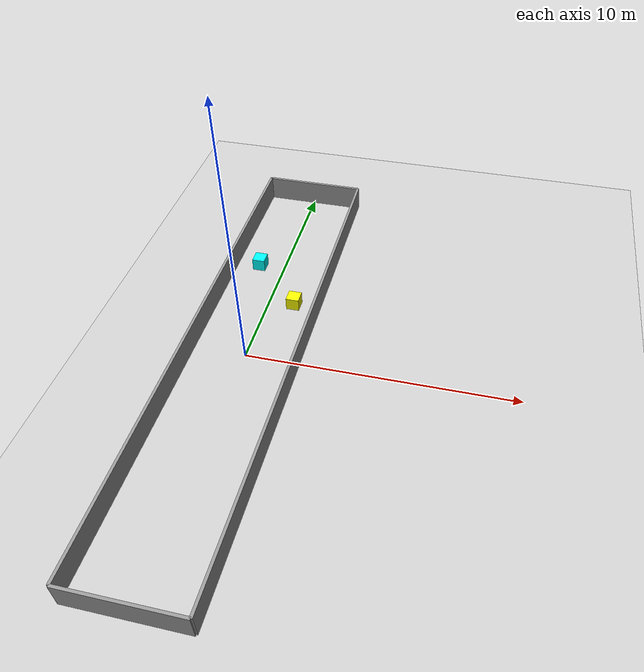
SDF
<?xml version="1.0" ?>
<sdf version="1.8">
  <world name="corridor_world">

    <physics name="default_physics" type="ode">
      <max_step_size>0.001</max_step_size>
      <real_time_factor>1.0</real_time_factor>
    </physics>

    <plugin filename="gz-sim-physics-system" name="gz::sim::systems::Physics" />
    <plugin filename="gz-sim-user-commands-system" name="gz::sim::systems::UserCommands" />
    <plugin filename="gz-sim-scene-broadcaster-system" name="gz::sim::systems::SceneBroadcaster" />

    <light type="directional" name="sun">
      <cast_shadows>true</cast_shadows>
      <pose>0 0 10 0 0 0</pose>
      <diffuse>0.8 0.8 0.8 1</diffuse>
      <specular>0.2 0.2 0.2 1</specular>
      <attenuation>
        <range>1000</range>
        <constant>0.9</constant>
        <linear>0.01</linear>
        <quadratic>0.001</quadratic>
      </attenuation>
      <direction>-0.5 0.1 -0.9</direction>
    </light>

    <model name="ground_plane">
      <static>true</static>
      <link name="link">
        <collision name="collision">
          <geometry>
            <plane>
              <normal>0 0 1</normal>
              <size>100 100</size>
            </plane>
          </geometry>
        </collision>
        <visual name="visual">
          <geometry>
            <plane>
              <normal>0 0 1</normal>
              <size>100 100</size>
            </plane>
          </geometry>
          <material>
            <ambient>0.8 0.8 0.8 1</ambient>
            <diffuse>0.8 0.8 0.8 1</diffuse>
            <specular>0.8 0.8 0.8 1</specular>
          </material>
        </visual>
      </link>
    </model>

    <model name="left_wall">
      <static>true</static>
      <pose>-2 0 0.5 0 0 0</pose>
      <link name="link">
        <collision name="collision">
          <geometry>
            <box>
              <size>0.1 20 1</size>
            </box>
          </geometry>
        </collision>
        <visual name="visual">
          <geometry>
            <box>
              <size>0.1 20 1</size>
            </box>
          </geometry>
          <material>
            <ambient>0.5 0.5 0.5 1</ambient>
            <diffuse>0.6 0.6 0.6 1</diffuse>
          </material>
        </visual>
      </link>
    </model>

    <model name="right_wall">
      <static>true</static>
      <pose>2 0 0.5 0 0 0</pose>
      <link name="link">
        <collision name="collision">
          <geometry>
            <box>
              <size>0.1 20 1</size>
            </box>
          </geometry>
        </collision>
        <visual name="visual">
          <geometry>
            <box>
              <size>0.1 20 1</size>
            </box>
          </geometry>
          <material>
            <ambient>0.5 0.5 0.5 1</ambient>
            <diffuse>0.6 0.6 0.6 1</diffuse>
          </material>
        </visual>
      </link>
    </model>

    <model name="front_wall">
      <static>true</static>
      <pose>0 -10 0.5 0 0 0</pose>
      <link name="link">
        <collision name="collision">
          <geometry>
            <box>
              <size>4 0.1 1</size>
            </box>
          </geometry>
        </collision>
        <visual name="visual">
          <geometry>
            <box>
              <size>4 0.1 1</size>
            </box>
          </geometry>
          <material>
            <ambient>0.5 0.5 0.5 1</ambient>
            <diffuse>0.6 0.6 0.6 1</diffuse>
          </material>
        </visual>
      </link>
    </model>

    <model name="back_wall">
      <static>true</static>
      <pose>0 10 0.5 0 0 0</pose>
      <link name="link">
        <collision name="collision">
          <geometry>
            <box>
              <size>4 0.1 1</size>
            </box>
          </geometry>
        </collision>
        <visual name="visual">
          <geometry>
            <box>
              <size>4 0.1 1</size>
            </box>
          </geometry>
          <material>
            <ambient>0.5 0.5 0.5 1</ambient>
            <diffuse>0.6 0.6 0.6 1</diffuse>
          </material>
        </visual>
      </link>
    </model>

    <model name="obstacle_1">
      <static>true</static>
      <pose>1 3 0.25 0 0 0</pose>
      <link name="link">
        <collision name="collision">
          <geometry>
            <box>
              <size>0.5 0.5 0.5</size>
            </box>
          </geometry>
        </collision>
        <visual name="visual">
          <geometry>
            <box>
              <size>0.5 0.5 0.5</size>
            </box>
          </geometry>
          <material>
            <ambient>1 1 0 1</ambient>
            <diffuse>1 1 0 1</diffuse>
          </material>
        </visual>
      </link>
    </model>

    <model name="obstacle_2">
      <static>true</static>
      <pose>-1 5 0.25 0 0 0</pose>
      <link name="link">
        <collision name="collision">
          <geometry>
            <box>
              <size>0.5 0.5 0.5</size>
            </box>
          </geometry>
        </collision>
        <visual name="visual">
          <geometry>
            <box>
              <size>0.5 0.5 0.5</size>
            </box>
          </geometry>
          <material>
            <ambient>0 1 1 1</ambient>
            <diffuse>0 1 1 1</diffuse>
          </material>
        </visual>
      </link>
    </model>

  </world>
</sdf>
